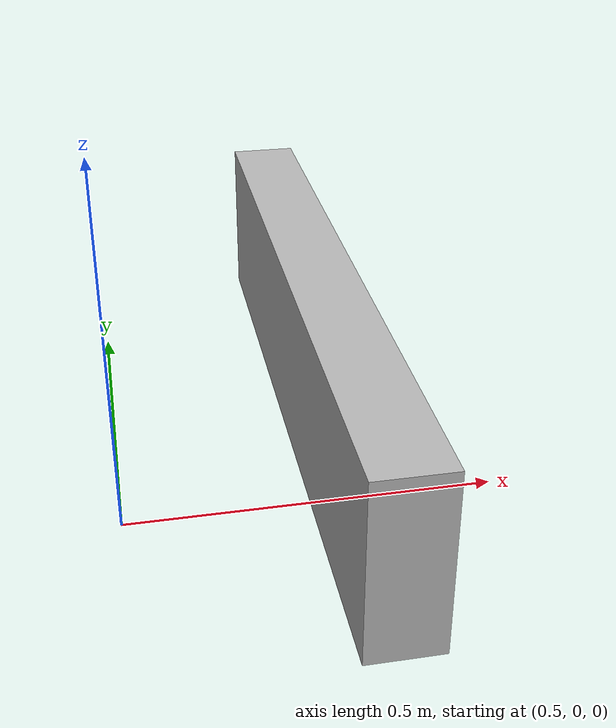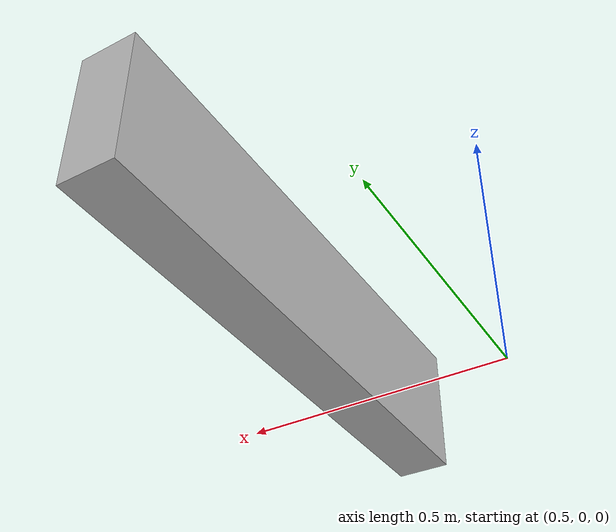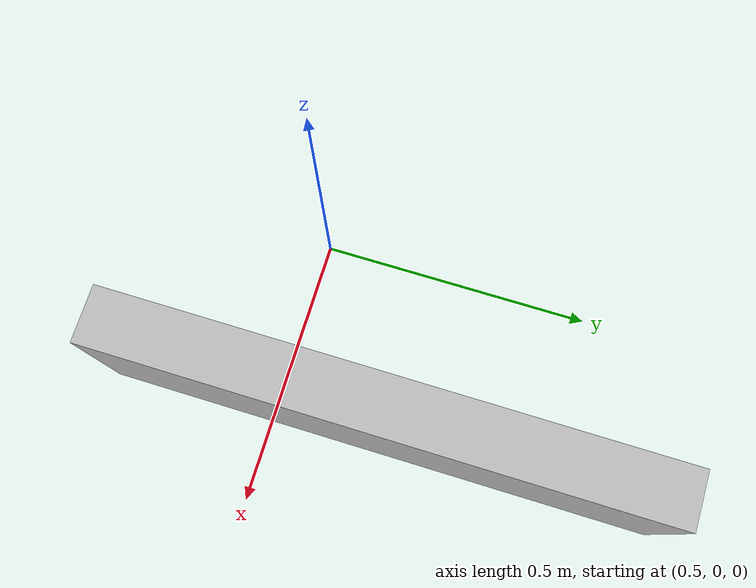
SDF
<sdf version="1.6">
  <model name="wall">
    <pose>0.8 0.2 0.125 0 0 1.57</pose>
    <static>true</static>
    <link name="link">
      <collision name="collision">
        <geometry>
          <box>
            <size>1 0.1 0.25</size>
          </box>
        </geometry>
      </collision>
      <visual name="visual">
        <geometry>
          <box>
            <size>1 0.1 0.25</size>
          </box>
        </geometry>
      </visual>
    </link>
  </model>
</sdf>
